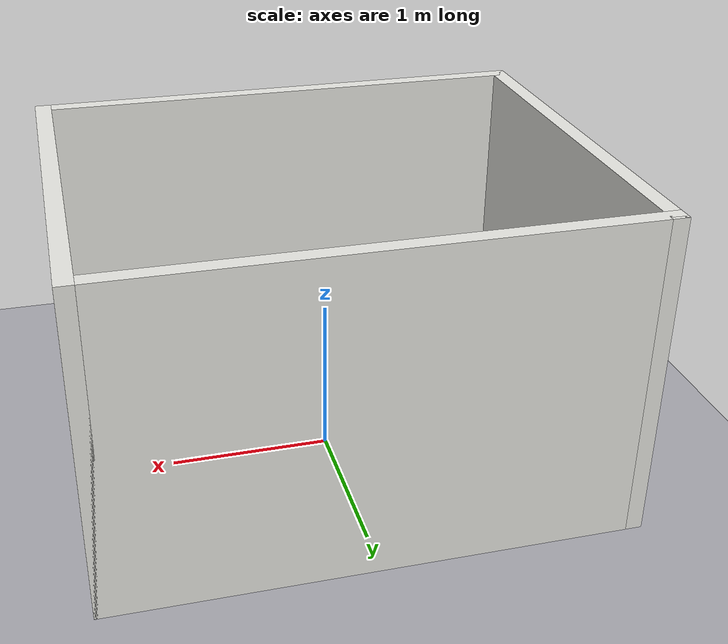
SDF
<?xml version="1.0" ?>
<sdf version="1.9">
  <world name="tetra_empty_room">

    <physics name="1ms" type="ignored">
      <max_step_size>0.001</max_step_size>
      <real_time_factor>1.0</real_time_factor>
    </physics>

    <plugin filename="ignition-gazebo-physics-system"
            name="ignition::gazebo::systems::Physics"/>
    <plugin filename="ignition-gazebo-user-commands-system"
            name="ignition::gazebo::systems::UserCommands"/>
    <plugin filename="ignition-gazebo-scene-broadcaster-system"
            name="ignition::gazebo::systems::SceneBroadcaster"/>
    <plugin filename="ignition-gazebo-contact-system"
            name="ignition::gazebo::systems::Contact"/>

    <gravity>0 0 -9.8</gravity>

    <scene>
      <ambient>0.6 0.6 0.6 1</ambient>
      <background>0.75 0.80 0.86 1</background>
      <grid>false</grid>
    </scene>

    <light type="directional" name="sun">
      <cast_shadows>true</cast_shadows>
      <pose>0 0 8 0 0 0</pose>
      <diffuse>0.9 0.9 0.9 1</diffuse>
      <specular>0.2 0.2 0.2 1</specular>
      <direction>-0.4 0.3 -0.9</direction>
    </light>

    <model name="ground_plane">
      <static>true</static>
      <link name="link">
        <collision name="collision">
          <geometry><plane><normal>0 0 1</normal><size>20 20</size></plane></geometry>
        </collision>
        <visual name="visual">
          <geometry><plane><normal>0 0 1</normal><size>20 20</size></plane></geometry>
          <material>
            <ambient>0.55 0.55 0.58 1</ambient>
            <diffuse>0.65 0.65 0.68 1</diffuse>
          </material>
        </visual>
      </link>
    </model>

    <model name="room">
      <static>true</static>
      <link name="walls">

        <collision name="wall_xpos_collision">
          <pose>1.55 0 1.0 0 0 0</pose>
          <geometry><box><size>0.1 2.6 2.0</size></box></geometry>
        </collision>
        <visual name="wall_xpos_visual">
          <pose>1.55 0 1.0 0 0 0</pose>
          <geometry><box><size>0.1 2.6 2.0</size></box></geometry>
          <material><ambient>0.8 0.8 0.78 1</ambient><diffuse>0.9 0.9 0.88 1</diffuse></material>
        </visual>

        <collision name="wall_xneg_collision">
          <pose>-1.55 0 1.0 0 0 0</pose>
          <geometry><box><size>0.1 2.6 2.0</size></box></geometry>
        </collision>
        <visual name="wall_xneg_visual">
          <pose>-1.55 0 1.0 0 0 0</pose>
          <geometry><box><size>0.1 2.6 2.0</size></box></geometry>
          <material><ambient>0.8 0.8 0.78 1</ambient><diffuse>0.9 0.9 0.88 1</diffuse></material>
        </visual>

        <collision name="wall_ypos_collision">
          <pose>0 1.25 1.0 0 0 0</pose>
          <geometry><box><size>3.2 0.1 2.0</size></box></geometry>
        </collision>
        <visual name="wall_ypos_visual">
          <pose>0 1.25 1.0 0 0 0</pose>
          <geometry><box><size>3.2 0.1 2.0</size></box></geometry>
          <material><ambient>0.8 0.8 0.78 1</ambient><diffuse>0.9 0.9 0.88 1</diffuse></material>
        </visual>

        <collision name="wall_yneg_collision">
          <pose>0 -1.25 1.0 0 0 0</pose>
          <geometry><box><size>3.2 0.1 2.0</size></box></geometry>
        </collision>
        <visual name="wall_yneg_visual">
          <pose>0 -1.25 1.0 0 0 0</pose>
          <geometry><box><size>3.2 0.1 2.0</size></box></geometry>
          <material><ambient>0.8 0.8 0.78 1</ambient><diffuse>0.9 0.9 0.88 1</diffuse></material>
        </visual>

      </link>
    </model>

  </world>
</sdf>
